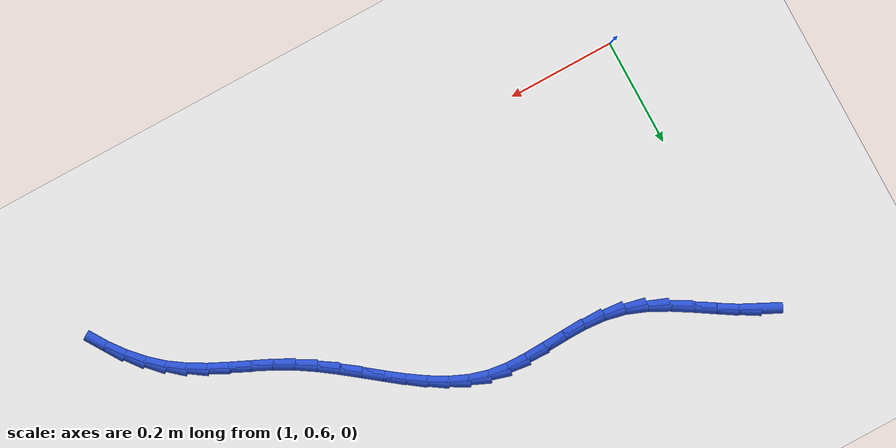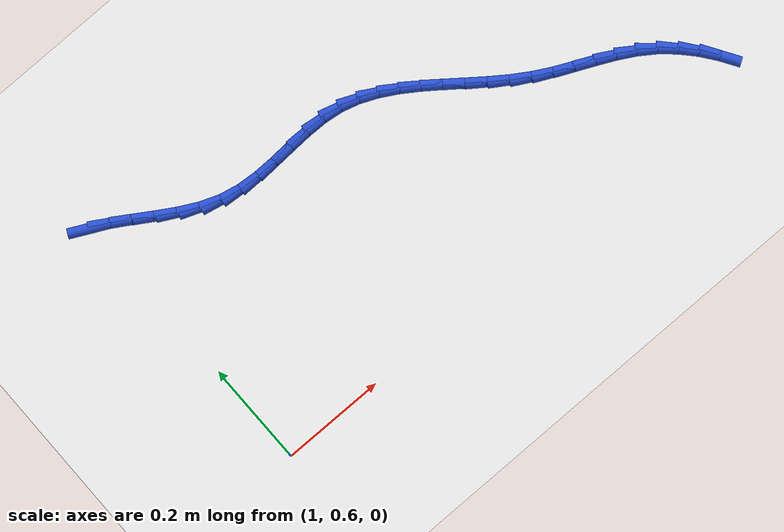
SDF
<sdf version="1.6">
 <world name="default">
  <model name="ground_plane">
   <static>1</static>
   <link name="link">
    <collision name="collision">
     <geometry><plane><normal>0 0 1</normal><size>100 100</size></plane></geometry>
     <surface><friction><ode><mu>100</mu><mu2>50</mu2></ode></friction></surface>
    </collision>
    <visual name="visual">
     <cast_shadows>0</cast_shadows>
     <geometry><plane><normal>0 0 1</normal><size>100 100</size></plane></geometry>
     <material>
      <script><uri>file://media/materials/scripts/gazebo.material</uri><name>Gazebo/WhiteGlow</name></script>
     </material>
    </visual>
   </link>
  </model>
  <model name="line">
   <link name="link_46">
    <pose>0.9911736523076631 1.144172845237093 0.01 0 1.57 -0.45979049337486355</pose>
    <collision name="collision">
     <geometry><cylinder><radius>0.01</radius><length>0.08</length></cylinder></geometry>
    </collision>
    <visual name="visual">
     <material>
      <script><name>Gazebo/Blue</name><uri>file://media/materials/scripts/gazebo.material</uri></script>
     </material>
     <geometry><cylinder><radius>0.01</radius><length>0.08</length></cylinder></geometry>
    </visual>
   </link>
   <link name="link_47">
    <pose>1.024882310441322 1.1274807268819713 0.01 0 1.57 -0.5375951508171143</pose>
    <collision name="collision">
     <geometry><cylinder><radius>0.01</radius><length>0.08</length></cylinder></geometry>
    </collision>
    <visual name="visual">
     <material>
      <script><name>Gazebo/Blue</name><uri>file://media/materials/scripts/gazebo.material</uri></script>
     </material>
     <geometry><cylinder><radius>0.01</radius><length>0.08</length></cylinder></geometry>
    </visual>
   </link>
   <link name="link_48">
    <pose>1.0591707994439508 1.1070391170549077 0.01 0 1.57 -0.5636952013133198</pose>
    <collision name="collision">
     <geometry><cylinder><radius>0.01</radius><length>0.08</length></cylinder></geometry>
    </collision>
    <visual name="visual">
     <material>
      <script><name>Gazebo/Blue</name><uri>file://media/materials/scripts/gazebo.material</uri></script>
     </material>
     <geometry><cylinder><radius>0.01</radius><length>0.08</length></cylinder></geometry>
    </visual>
   </link>
   <link name="link_49">
    <pose>1.0941255421937102 1.0849439036220536 0.01 0 1.57 -0.5451110758940891</pose>
    <collision name="collision">
     <geometry><cylinder><radius>0.01</radius><length>0.08</length></cylinder></geometry>
    </collision>
    <visual name="visual">
     <material>
      <script><name>Gazebo/Blue</name><uri>file://media/materials/scripts/gazebo.material</uri></script>
     </material>
     <geometry><cylinder><radius>0.01</radius><length>0.08</length></cylinder></geometry>
    </visual>
   </link>
   <link name="link_50">
    <pose>1.1298329615687628 1.0632909744495607 0.01 0 1.57 -0.4818977836394871</pose>
    <collision name="collision">
     <geometry><cylinder><radius>0.01</radius><length>0.08</length></cylinder></geometry>
    </collision>
    <visual name="visual">
     <material>
      <script><name>Gazebo/Blue</name><uri>file://media/materials/scripts/gazebo.material</uri></script>
     </material>
     <geometry><cylinder><radius>0.01</radius><length>0.08</length></cylinder></geometry>
    </visual>
   </link>
   <link name="link_51">
    <pose>1.1663794804472691 1.0441762174035782 0.01 0 1.57 -0.36876237907054593</pose>
    <collision name="collision">
     <geometry><cylinder><radius>0.01</radius><length>0.08</length></cylinder></geometry>
    </collision>
    <visual name="visual">
     <material>
      <script><name>Gazebo/Blue</name><uri>file://media/materials/scripts/gazebo.material</uri></script>
     </material>
     <geometry><cylinder><radius>0.01</radius><length>0.08</length></cylinder></geometry>
    </visual>
   </link>
   <link name="link_52">
    <pose>1.203851521707391 1.0296955203502587 0.01 0 1.57 -0.21095598486523584</pose>
    <collision name="collision">
     <geometry><cylinder><radius>0.01</radius><length>0.08</length></cylinder></geometry>
    </collision>
    <visual name="visual">
     <material>
      <script><name>Gazebo/Blue</name><uri>file://media/materials/scripts/gazebo.material</uri></script>
     </material>
     <geometry><cylinder><radius>0.01</radius><length>0.08</length></cylinder></geometry>
    </visual>
   </link>
   <link name="link_53">
    <pose>1.2422780355674703 1.021466787385188 0.01 0 1.57 -0.075652017089533</pose>
    <collision name="collision">
     <geometry><cylinder><radius>0.01</radius><length>0.08</length></cylinder></geometry>
    </collision>
    <visual name="visual">
     <material>
      <script><name>Gazebo/Blue</name><uri>file://media/materials/scripts/gazebo.material</uri></script>
     </material>
     <geometry><cylinder><radius>0.01</radius><length>0.08</length></cylinder></geometry>
    </visual>
   </link>
   <link name="link_54">
    <pose>1.2813748029363758 1.0185033825001908 0.01 0 1.57 0.010983071330957342</pose>
    <collision name="collision">
     <geometry><cylinder><radius>0.01</radius><length>0.08</length></cylinder></geometry>
    </collision>
    <visual name="visual">
     <material>
      <script><name>Gazebo/Blue</name><uri>file://media/materials/scripts/gazebo.material</uri></script>
     </material>
     <geometry><cylinder><radius>0.01</radius><length>0.08</length></cylinder></geometry>
    </visual>
   </link>
   <link name="link_55">
    <pose>1.3207514578710802 1.0189358765005276 0.01 0 1.57 0.04983007580823879</pose>
    <collision name="collision">
     <geometry><cylinder><radius>0.01</radius><length>0.08</length></cylinder></geometry>
    </collision>
    <visual name="visual">
     <material>
      <script><name>Gazebo/Blue</name><uri>file://media/materials/scripts/gazebo.material</uri></script>
     </material>
     <geometry><cylinder><radius>0.01</radius><length>0.08</length></cylinder></geometry>
    </visual>
   </link>
   <link name="link_56">
    <pose>1.360017549019952 1.0208941298723706 0.01 0 1.57 0.04160811628697034</pose>
    <collision name="collision">
     <geometry><cylinder><radius>0.01</radius><length>0.08</length></cylinder></geometry>
    </collision>
    <visual name="visual">
     <material>
      <script><name>Gazebo/Blue</name><uri>file://media/materials/scripts/gazebo.material</uri></script>
     </material>
     <geometry><cylinder><radius>0.01</radius><length>0.08</length></cylinder></geometry>
    </visual>
   </link>
   <link name="link_57">
    <pose>1.398782625031359 1.0225080031018914 0.01 0 1.57 -0.015857904344158357</pose>
    <collision name="collision">
     <geometry><cylinder><radius>0.01</radius><length>0.08</length></cylinder></geometry>
    </collision>
    <visual name="visual">
     <material>
      <script><name>Gazebo/Blue</name><uri>file://media/materials/scripts/gazebo.material</uri></script>
     </material>
     <geometry><cylinder><radius>0.01</radius><length>0.08</length></cylinder></geometry>
    </visual>
   </link>
   <link name="link_58">
    <pose>1.43665623455367 1.0219073566752621 0.01 0 1.57 -0.12734291241009738</pose>
    <collision name="collision">
     <geometry><cylinder><radius>0.01</radius><length>0.08</length></cylinder></geometry>
    </collision>
    <visual name="visual">
     <material>
      <script><name>Gazebo/Blue</name><uri>file://media/materials/scripts/gazebo.material</uri></script>
     </material>
     <geometry><cylinder><radius>0.01</radius><length>0.08</length></cylinder></geometry>
    </visual>
   </link>
   <link name="link_59">
    <pose>1.4732479896399073 1.0172223039811588 0.01 0 1.57 -0.27898358138562007</pose>
    <collision name="collision">
     <geometry><cylinder><radius>0.01</radius><length>0.08</length></cylinder></geometry>
    </collision>
    <visual name="visual">
     <material>
      <script><name>Gazebo/Blue</name><uri>file://media/materials/scripts/gazebo.material</uri></script>
     </material>
     <geometry><cylinder><radius>0.01</radius><length>0.08</length></cylinder></geometry>
    </visual>
   </link>
   <link name="link_60">
    <pose>1.5083163868573801 1.007176814900471 0.01 0 1.57 -0.4134794339668781</pose>
    <collision name="collision">
     <geometry><cylinder><radius>0.01</radius><length>0.08</length></cylinder></geometry>
    </collision>
    <visual name="visual">
     <material>
      <script><name>Gazebo/Blue</name><uri>file://media/materials/scripts/gazebo.material</uri></script>
     </material>
     <geometry><cylinder><radius>0.01</radius><length>0.08</length></cylinder></geometry>
    </visual>
   </link>
   <link name="link_61">
    <pose>1.5420872819353577 0.9923590174091181 0.01 0 1.57 -0.5168349474370424</pose>
    <collision name="collision">
     <geometry><cylinder><radius>0.01</radius><length>0.08</length></cylinder></geometry>
    </collision>
    <visual name="visual">
     <material>
      <script><name>Gazebo/Blue</name><uri>file://media/materials/scripts/gazebo.material</uri></script>
     </material>
     <geometry><cylinder><radius>0.01</radius><length>0.08</length></cylinder></geometry>
    </visual>
   </link>
   <link name="link_62">
    <pose>1.5748779953306584 0.9737218653517401 0.01 0 1.57 -0.589831662318913</pose>
    <collision name="collision">
     <geometry><cylinder><radius>0.01</radius><length>0.08</length></cylinder></geometry>
    </collision>
    <visual name="visual">
     <material>
      <script><name>Gazebo/Blue</name><uri>file://media/materials/scripts/gazebo.material</uri></script>
     </material>
     <geometry><cylinder><radius>0.01</radius><length>0.08</length></cylinder></geometry>
    </visual>
   </link>
   <link name="link_63">
    <pose>1.6070058475000994 0.9522183125729768 0.01 0 1.57 -0.6349952165638123</pose>
    <collision name="collision">
     <geometry><cylinder><radius>0.01</radius><length>0.08</length></cylinder></geometry>
    </collision>
    <visual name="visual">
     <material>
      <script><name>Gazebo/Blue</name><uri>file://media/materials/scripts/gazebo.material</uri></script>
     </material>
     <geometry><cylinder><radius>0.01</radius><length>0.08</length></cylinder></geometry>
    </visual>
   </link>
   <link name="link_64">
    <pose>1.6387881589004993 0.9288013129174674 0.01 0 1.57 -0.654730766561439</pose>
    <collision name="collision">
     <geometry><cylinder><radius>0.01</radius><length>0.08</length></cylinder></geometry>
    </collision>
    <visual name="visual">
     <material>
      <script><name>Gazebo/Blue</name><uri>file://media/materials/scripts/gazebo.material</uri></script>
     </material>
     <geometry><cylinder><radius>0.01</radius><length>0.08</length></cylinder></geometry>
    </visual>
   </link>
   <link name="link_65">
    <pose>1.6705422499886748 0.9044238202298515 0.01 0 1.57 -0.6505072465358958</pose>
    <collision name="collision">
     <geometry><cylinder><radius>0.01</radius><length>0.08</length></cylinder></geometry>
    </collision>
    <visual name="visual">
     <material>
      <script><name>Gazebo/Blue</name><uri>file://media/materials/scripts/gazebo.material</uri></script>
     </material>
     <geometry><cylinder><radius>0.01</radius><length>0.08</length></cylinder></geometry>
    </visual>
   </link>
   <link name="link_66">
    <pose>1.7025854412214434 0.8800387883547691 0.01 0 1.57 -0.6226479556047881</pose>
    <collision name="collision">
     <geometry><cylinder><radius>0.01</radius><length>0.08</length></cylinder></geometry>
    </collision>
    <visual name="visual">
     <material>
      <script><name>Gazebo/Blue</name><uri>file://media/materials/scripts/gazebo.material</uri></script>
     </material>
     <geometry><cylinder><radius>0.01</radius><length>0.08</length></cylinder></geometry>
    </visual>
   </link>
   <link name="link_67">
    <pose>1.735235053055624 0.8565991711368596 0.01 0 1.57 -0.5704597942559396</pose>
    <collision name="collision">
     <geometry><cylinder><radius>0.01</radius><length>0.08</length></cylinder></geometry>
    </collision>
    <visual name="visual">
     <material>
      <script><name>Gazebo/Blue</name><uri>file://media/materials/scripts/gazebo.material</uri></script>
     </material>
     <geometry><cylinder><radius>0.01</radius><length>0.08</length></cylinder></geometry>
    </visual>
   </link>
   <link name="link_68">
    <pose>1.7688084059480333 0.8350579224207628 0.01 0 1.57 -0.4990698685989431</pose>
    <collision name="collision">
     <geometry><cylinder><radius>0.01</radius><length>0.08</length></cylinder></geometry>
    </collision>
    <visual name="visual">
     <material>
      <script><name>Gazebo/Blue</name><uri>file://media/materials/scripts/gazebo.material</uri></script>
     </material>
     <geometry><cylinder><radius>0.01</radius><length>0.08</length></cylinder></geometry>
    </visual>
   </link>
   <link name="link_69">
    <pose>1.803513753651474 0.8161401978272914 0.01 0 1.57 -0.4471915604072485</pose>
    <collision name="collision">
     <geometry><cylinder><radius>0.01</radius><length>0.08</length></cylinder></geometry>
    </collision>
    <visual name="visual">
     <material>
      <script><name>Gazebo/Blue</name><uri>file://media/materials/scripts/gazebo.material</uri></script>
     </material>
     <geometry><cylinder><radius>0.01</radius><length>0.08</length></cylinder></geometry>
    </visual>
   </link>
   <link name="link_70">
    <pose>1.8388902930908457 0.7991737516492257 0.01 0 1.57 -0.43028947240999915</pose>
    <collision name="collision">
     <geometry><cylinder><radius>0.01</radius><length>0.08</length></cylinder></geometry>
    </collision>
    <visual name="visual">
     <material>
      <script><name>Gazebo/Blue</name><uri>file://media/materials/scripts/gazebo.material</uri></script>
     </material>
     <geometry><cylinder><radius>0.01</radius><length>0.08</length></cylinder></geometry>
    </visual>
   </link>
   <link name="link_71">
    <pose>1.874223659609266 0.7829567459588548 0.01 0 1.57 -0.44926367710668574</pose>
    <collision name="collision">
     <geometry><cylinder><radius>0.01</radius><length>0.08</length></cylinder></geometry>
    </collision>
    <visual name="visual">
     <material>
      <script><name>Gazebo/Blue</name><uri>file://media/materials/scripts/gazebo.material</uri></script>
     </material>
     <geometry><cylinder><radius>0.01</radius><length>0.08</length></cylinder></geometry>
    </visual>
   </link>
   <link name="link_72">
    <pose>1.9087990070898724 0.7662863372445088 0.01 0 1.57 -0.5056288452672292</pose>
    <collision name="collision">
     <geometry><cylinder><radius>0.01</radius><length>0.08</length></cylinder></geometry>
    </collision>
    <visual name="visual">
     <material>
      <script><name>Gazebo/Blue</name><uri>file://media/materials/scripts/gazebo.material</uri></script>
     </material>
     <geometry><cylinder><radius>0.01</radius><length>0.08</length></cylinder></geometry>
    </visual>
   </link>
   <link name="link_73">
    <pose>1.9419014894158007 0.7479596819945177 0.01 0 1.57 -0.6004953922942099</pose>
    <collision name="collision">
     <geometry><cylinder><radius>0.01</radius><length>0.08</length></cylinder></geometry>
    </collision>
    <visual name="visual">
     <material>
      <script><name>Gazebo/Blue</name><uri>file://media/materials/scripts/gazebo.material</uri></script>
     </material>
     <geometry><cylinder><radius>0.01</radius><length>0.08</length></cylinder></geometry>
    </visual>
   </link>
   <link name="link_74">
    <pose>1.9728212673469605 0.7267838295471042 0.01 0 1.57 -0.7158110308946194</pose>
    <collision name="collision">
     <geometry><cylinder><radius>0.01</radius><length>0.08</length></cylinder></geometry>
    </collision>
    <visual name="visual">
     <material>
      <script><name>Gazebo/Blue</name><uri>file://media/materials/scripts/gazebo.material</uri></script>
     </material>
     <geometry><cylinder><radius>0.01</radius><length>0.08</length></cylinder></geometry>
    </visual>
   </link>
   <link name="link_75">
    <pose>2.0011448157784226 0.7021513022598448 0.01 0 1.57 -0.8231492777179116</pose>
    <collision name="collision">
     <geometry><cylinder><radius>0.01</radius><length>0.08</length></cylinder></geometry>
    </collision>
    <visual name="visual">
     <material>
      <script><name>Gazebo/Blue</name><uri>file://media/materials/scripts/gazebo.material</uri></script>
     </material>
     <geometry><cylinder><radius>0.01</radius><length>0.08</length></cylinder></geometry>
    </visual>
   </link>
   <link name="link_76">
    <pose>2.0269155552674945 0.6743574797110984 0.01 0 1.57 -0.919733079183258</pose>
    <collision name="collision">
     <geometry><cylinder><radius>0.01</radius><length>0.08</length></cylinder></geometry>
    </collision>
    <visual name="visual">
     <material>
      <script><name>Gazebo/Blue</name><uri>file://media/materials/scripts/gazebo.material</uri></script>
     </material>
     <geometry><cylinder><radius>0.01</radius><length>0.08</length></cylinder></geometry>
    </visual>
   </link>
   <link name="link_77">
    <pose>2.050215941154951 0.6437748684530051 0.01 0 1.57 -1.005941736891699</pose>
    <collision name="collision">
     <geometry><cylinder><radius>0.01</radius><length>0.08</length></cylinder></geometry>
    </collision>
    <visual name="visual">
     <material>
      <script><name>Gazebo/Blue</name><uri>file://media/materials/scripts/gazebo.material</uri></script>
     </material>
     <geometry><cylinder><radius>0.01</radius><length>0.08</length></cylinder></geometry>
    </visual>
   </link>
  </model>
 </world>
</sdf>
